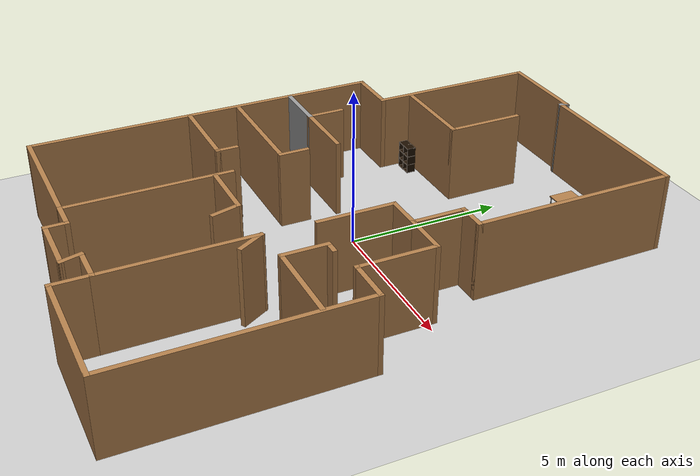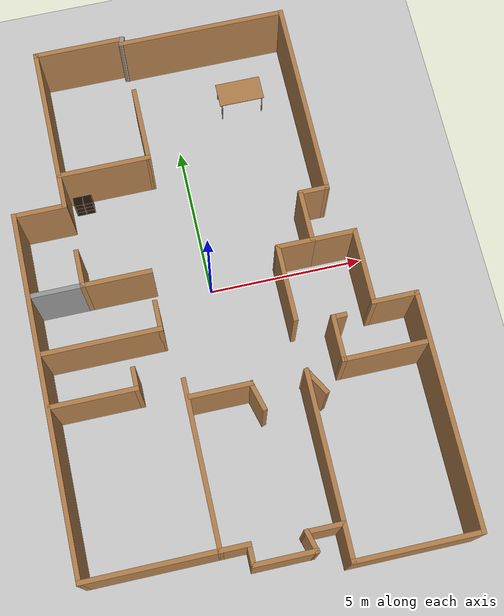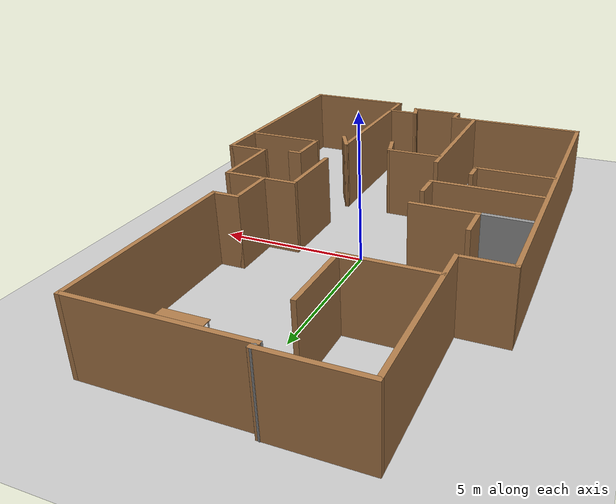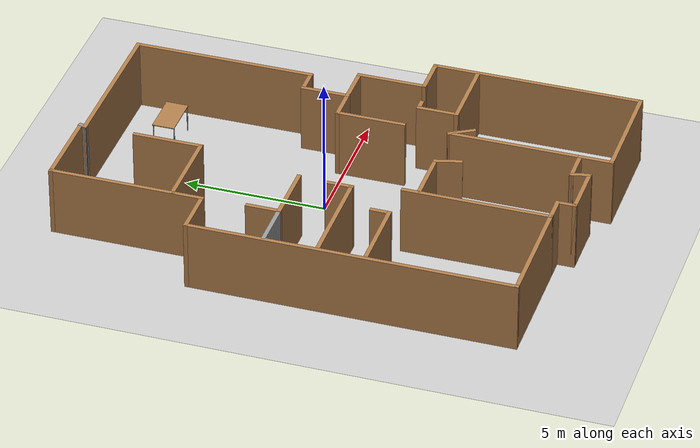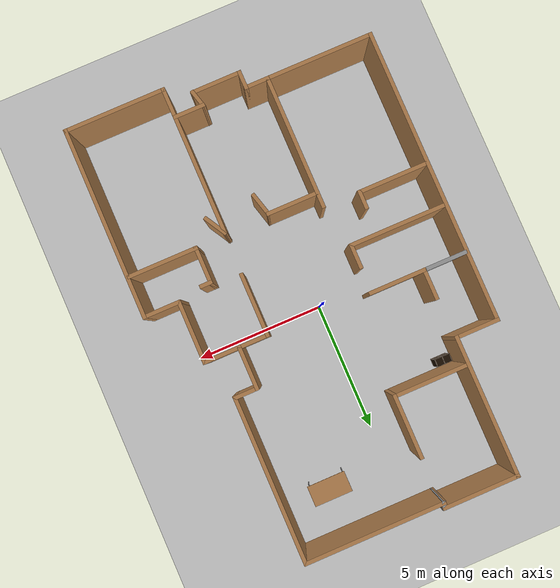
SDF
<sdf version="1.6">
 <world name="default">
  <model name="ground_plane">
   <static>1</static>
   <link name="link">
    <collision name="collision">
     <geometry><plane><normal>0 0 1</normal><size>100 100</size></plane></geometry>
     <surface>
      <contact><collide_bitmask>65535</collide_bitmask></contact>
      <friction><ode><mu>100</mu><mu2>50</mu2></ode></friction>
     </surface>
    </collision>
    <visual name="visual">
     <cast_shadows>0</cast_shadows>
     <geometry><plane><normal>0 0 1</normal><size>100 100</size></plane></geometry>
     <material>
      <script><uri>file://media/materials/scripts/gazebo.material</uri><name>Gazebo/Grey</name></script>
     </material>
    </visual>
   </link>
  </model>
  <model name="map_60">
   <pose>0.211771 -0.553556 0 0 -0 0</pose>
   <link name="Wall_0">
    <collision name="Wall_0_Collision">
     <geometry><box><size>3 0.15 2.5</size></box></geometry>
     <pose>0 0 1.25 0 -0 0</pose>
    </collision>
    <visual name="Wall_0_Visual">
     <pose>0 0 1.25 0 -0 0</pose>
     <geometry><box><size>3 0.15 2.5</size></box></geometry>
     <material>
      <script><uri>file://media/materials/scripts/gazebo.material</uri><name>Gazebo/Wood</name></script>
      <ambient>1 1 1 1</ambient>
     </material>
     <meta><layer>0</layer></meta>
    </visual>
    <pose>-2.77235 8.90048 0 0 -0 3.14159</pose>
   </link>
   <link name="Wall_1">
    <collision name="Wall_1_Collision">
     <geometry><box><size>5.5 0.15 2.5</size></box></geometry>
     <pose>0 0 1.25 0 -0 0</pose>
    </collision>
    <visual name="Wall_1_Visual">
     <pose>0 0 1.25 0 -0 0</pose>
     <geometry><box><size>5.5 0.15 2.5</size></box></geometry>
     <material>
      <script><uri>file://media/materials/scripts/gazebo.material</uri><name>Gazebo/Wood</name></script>
      <ambient>1 1 1 1</ambient>
     </material>
     <meta><layer>0</layer></meta>
    </visual>
    <pose>-4.19735 6.22548 0 0 -0 -1.5708</pose>
   </link>
   <link name="Wall_10">
    <collision name="Wall_10_Collision">
     <geometry><box><size>5.25 0.15 2.5</size></box></geometry>
     <pose>0 0 1.25 0 -0 0</pose>
    </collision>
    <visual name="Wall_10_Visual">
     <pose>0 0 1.25 0 -0 0</pose>
     <geometry><box><size>5.25 0.15 2.5</size></box></geometry>
     <material>
      <script><uri>file://media/materials/scripts/gazebo.material</uri><name>Gazebo/Wood</name></script>
      <ambient>1 1 1 1</ambient>
     </material>
     <meta><layer>0</layer></meta>
    </visual>
    <pose>-1.69735 -5.24952 0 0 -0 1.5708</pose>
   </link>
   <link name="Wall_12">
    <collision name="Wall_12_Collision">
     <geometry><box><size>1 0.15 2.5</size></box></geometry>
     <pose>0 0 1.25 0 -0 0</pose>
    </collision>
    <visual name="Wall_12_Visual">
     <pose>0 0 1.25 0 -0 0</pose>
     <geometry><box><size>1 0.15 2.5</size></box></geometry>
     <material>
      <script><uri>file://media/materials/scripts/gazebo.material</uri><name>Gazebo/Wood</name></script>
      <ambient>1 1 1 1</ambient>
     </material>
     <meta><layer>0</layer></meta>
    </visual>
    <pose>-1.27235 -7.79952 0 0 -0 0</pose>
   </link>
   <link name="Wall_13">
    <collision name="Wall_13_Collision">
     <geometry><box><size>0.75 0.15 2.5</size></box></geometry>
     <pose>0 0 1.25 0 -0 0</pose>
    </collision>
    <visual name="Wall_13_Visual">
     <pose>0 0 1.25 0 -0 0</pose>
     <geometry><box><size>0.75 0.15 2.5</size></box></geometry>
     <material>
      <script><uri>file://media/materials/scripts/gazebo.material</uri><name>Gazebo/Wood</name></script>
      <ambient>1 1 1 1</ambient>
     </material>
     <meta><layer>0</layer></meta>
    </visual>
    <pose>-0.847354 -8.09952 0 0 -0 -1.5708</pose>
   </link>
   <link name="Wall_14">
    <collision name="Wall_14_Collision">
     <geometry><box><size>2 0.15 2.5</size></box></geometry>
     <pose>0 0 1.25 0 -0 0</pose>
    </collision>
    <visual name="Wall_14_Visual">
     <pose>0 0 1.25 0 -0 0</pose>
     <geometry><box><size>2 0.15 2.5</size></box></geometry>
     <material>
      <script><uri>file://media/materials/scripts/gazebo.material</uri><name>Gazebo/Wood</name></script>
      <ambient>1 1 1 1</ambient>
     </material>
     <meta><layer>0</layer></meta>
    </visual>
    <pose>0.077646 -8.39952 0 0 -0 0</pose>
   </link>
   <link name="Wall_15">
    <collision name="Wall_15_Collision">
     <geometry><box><size>0.75 0.15 2.5</size></box></geometry>
     <pose>0 0 1.25 0 -0 0</pose>
    </collision>
    <visual name="Wall_15_Visual">
     <pose>0 0 1.25 0 -0 0</pose>
     <geometry><box><size>0.75 0.15 2.5</size></box></geometry>
     <material>
      <script><uri>file://media/materials/scripts/gazebo.material</uri><name>Gazebo/Wood</name></script>
      <ambient>1 1 1 1</ambient>
     </material>
     <meta><layer>0</layer></meta>
    </visual>
    <pose>0.925 -8.10974 0 0 -0 1.8326</pose>
   </link>
   <link name="Wall_16">
    <collision name="Wall_16_Collision">
     <geometry><box><size>1.25 0.15 2.5</size></box></geometry>
     <pose>0 0 1.25 0 -0 0</pose>
    </collision>
    <visual name="Wall_16_Visual">
     <pose>0 0 1.25 0 -0 0</pose>
     <geometry><box><size>1.25 0.15 2.5</size></box></geometry>
     <material>
      <script><uri>file://media/materials/scripts/gazebo.material</uri><name>Gazebo/Wood</name></script>
      <ambient>1 1 1 1</ambient>
     </material>
     <meta><layer>0</layer></meta>
    </visual>
    <pose>1.39735 -7.81996 0 0 -0 0</pose>
   </link>
   <link name="Wall_17">
    <collision name="Wall_17_Collision">
     <geometry><box><size>1.25 0.15 2.5</size></box></geometry>
     <pose>0 0 1.25 0 -0 0</pose>
    </collision>
    <visual name="Wall_17_Visual">
     <pose>0 0 1.25 0 -0 0</pose>
     <geometry><box><size>1.25 0.15 2.5</size></box></geometry>
     <material>
      <script><uri>file://media/materials/scripts/gazebo.material</uri><name>Gazebo/Wood</name></script>
      <ambient>1 1 1 1</ambient>
     </material>
     <meta><layer>0</layer></meta>
    </visual>
    <pose>1.94735 -8.36996 0 0 -0 -1.5708</pose>
   </link>
   <link name="Wall_18">
    <collision name="Wall_18_Collision">
     <geometry><box><size>4 0.15 2.5</size></box></geometry>
     <pose>0 0 1.25 0 -0 0</pose>
    </collision>
    <visual name="Wall_18_Visual">
     <pose>0 0 1.25 0 -0 0</pose>
     <geometry><box><size>4 0.15 2.5</size></box></geometry>
     <material>
      <script><uri>file://media/materials/scripts/gazebo.material</uri><name>Gazebo/Wood</name></script>
      <ambient>1 1 1 1</ambient>
     </material>
     <meta><layer>0</layer></meta>
    </visual>
    <pose>3.87236 -8.91996 0 0 -0 0</pose>
   </link>
   <link name="Wall_19">
    <collision name="Wall_19_Collision">
     <geometry><box><size>7.5 0.15 2.5</size></box></geometry>
     <pose>0 0 1.25 0 -0 0</pose>
    </collision>
    <visual name="Wall_19_Visual">
     <pose>0 0 1.25 0 -0 0</pose>
     <geometry><box><size>7.5 0.15 2.5</size></box></geometry>
     <material>
      <script><uri>file://media/materials/scripts/gazebo.material</uri><name>Gazebo/Wood</name></script>
      <ambient>1 1 1 1</ambient>
     </material>
     <meta><layer>0</layer></meta>
    </visual>
    <pose>5.79735 -5.24496 0 0 -0 1.5708</pose>
   </link>
   <link name="Wall_2">
    <collision name="Wall_2_Collision">
     <geometry><box><size>1.75 0.15 2.5</size></box></geometry>
     <pose>0 0 1.25 0 -0 0</pose>
    </collision>
    <visual name="Wall_2_Visual">
     <pose>0 0 1.25 0 -0 0</pose>
     <geometry><box><size>1.75 0.15 2.5</size></box></geometry>
     <material>
      <script><uri>file://media/materials/scripts/gazebo.material</uri><name>Gazebo/Wood</name></script>
      <ambient>1 1 1 1</ambient>
     </material>
     <meta><layer>0</layer></meta>
    </visual>
    <pose>-4.99735 3.55048 0 0 -0 3.14159</pose>
   </link>
   <link name="Wall_20">
    <collision name="Wall_20_Collision">
     <geometry><box><size>1.5 0.15 2.5</size></box></geometry>
     <pose>0 0 1.25 0 -0 0</pose>
    </collision>
    <visual name="Wall_20_Visual">
     <pose>0 0 1.25 0 -0 0</pose>
     <geometry><box><size>1.5 0.15 2.5</size></box></geometry>
     <material>
      <script><uri>file://media/materials/scripts/gazebo.material</uri><name>Gazebo/Wood</name></script>
      <ambient>1 1 1 1</ambient>
     </material>
     <meta><layer>0</layer></meta>
    </visual>
    <pose>5.12235 -1.56996 0 0 -0 3.14159</pose>
   </link>
   <link name="Wall_21">
    <collision name="Wall_21_Collision">
     <geometry><box><size>2.5 0.15 2.5</size></box></geometry>
     <pose>0 0 1.25 0 -0 0</pose>
    </collision>
    <visual name="Wall_21_Visual">
     <pose>0 0 1.25 0 -0 0</pose>
     <geometry><box><size>2.5 0.15 2.5</size></box></geometry>
     <material>
      <script><uri>file://media/materials/scripts/gazebo.material</uri><name>Gazebo/Wood</name></script>
      <ambient>1 1 1 1</ambient>
     </material>
     <meta><layer>0</layer></meta>
    </visual>
    <pose>4.44735 -0.394963 0 0 -0 1.5708</pose>
   </link>
   <link name="Wall_22">
    <collision name="Wall_22_Collision">
     <geometry><box><size>1.5 0.15 2.5</size></box></geometry>
     <pose>0 0 1.25 0 -0 0</pose>
    </collision>
    <visual name="Wall_22_Visual">
     <pose>0 0 1.25 0 -0 0</pose>
     <geometry><box><size>1.5 0.15 2.5</size></box></geometry>
     <material>
      <script><uri>file://media/materials/scripts/gazebo.material</uri><name>Gazebo/Wood</name></script>
      <ambient>1 1 1 1</ambient>
     </material>
     <meta><layer>0</layer></meta>
    </visual>
    <pose>3.77236 0.780037 0 0 -0 3.14159</pose>
   </link>
   <link name="Wall_23">
    <collision name="Wall_23_Collision">
     <geometry><box><size>1.75 0.15 2.5</size></box></geometry>
     <pose>0 0 1.25 0 -0 0</pose>
    </collision>
    <visual name="Wall_23_Visual">
     <pose>0 0 1.25 0 -0 0</pose>
     <geometry><box><size>1.75 0.15 2.5</size></box></geometry>
     <material>
      <script><uri>file://media/materials/scripts/gazebo.material</uri><name>Gazebo/Wood</name></script>
      <ambient>1 1 1 1</ambient>
     </material>
     <meta><layer>0</layer></meta>
    </visual>
    <pose>3.09735 1.58004 0 0 -0 1.5708</pose>
   </link>
   <link name="Wall_24">
    <collision name="Wall_24_Collision">
     <geometry><box><size>1 0.15 2.5</size></box></geometry>
     <pose>0 0 1.25 0 -0 0</pose>
    </collision>
    <visual name="Wall_24_Visual">
     <pose>0 0 1.25 0 -0 0</pose>
     <geometry><box><size>1 0.15 2.5</size></box></geometry>
     <material>
      <script><uri>file://media/materials/scripts/gazebo.material</uri><name>Gazebo/Wood</name></script>
      <ambient>1 1 1 1</ambient>
     </material>
     <meta><layer>0</layer></meta>
    </visual>
    <pose>3.52236 2.38004 0 0 -0 0</pose>
   </link>
   <link name="Wall_25">
    <collision name="Wall_25_Collision">
     <geometry><box><size>6.5 0.15 2.5</size></box></geometry>
     <pose>0 0 1.25 0 -0 0</pose>
    </collision>
    <visual name="Wall_25_Visual">
     <pose>0 0 1.25 0 -0 0</pose>
     <geometry><box><size>6.5 0.15 2.5</size></box></geometry>
     <material>
      <script><uri>file://media/materials/scripts/gazebo.material</uri><name>Gazebo/Wood</name></script>
      <ambient>1 1 1 1</ambient>
     </material>
     <meta><layer>0</layer></meta>
    </visual>
    <pose>3.94735 5.55504 0 0 -0 1.5708</pose>
   </link>
   <link name="Wall_26">
    <collision name="Wall_26_Collision">
     <geometry><box><size>5.5 0.15 2.5</size></box></geometry>
     <pose>0 0 1.25 0 -0 0</pose>
    </collision>
    <visual name="Wall_26_Visual">
     <pose>0 0 1.25 0 -0 0</pose>
     <geometry><box><size>5.5 0.15 2.5</size></box></geometry>
     <material>
      <script><uri>file://media/materials/scripts/gazebo.material</uri><name>Gazebo/Wood</name></script>
      <ambient>1 1 1 1</ambient>
     </material>
     <meta><layer>0</layer></meta>
    </visual>
    <pose>1.27235 8.73004 0 0 -0 3.14159</pose>
   </link>
   <link name="Wall_28">
    <collision name="Wall_28_Collision">
     <geometry><box><size>0.329188 0.15 2.5</size></box></geometry>
     <pose>0 0 1.25 0 -0 0</pose>
    </collision>
    <visual name="Wall_28_Visual">
     <pose>0 0 1.25 0 -0 0</pose>
     <geometry><box><size>0.329188 0.15 2.5</size></box></geometry>
     <material>
      <script><uri>file://media/materials/scripts/gazebo.material</uri><name>Gazebo/Grey</name></script>
      <ambient>1 1 1 1</ambient>
     </material>
     <meta><layer>0</layer></meta>
    </visual>
    <pose>-1.375 8.81526 0 0 -0 1.25711</pose>
   </link>
   <link name="Wall_30">
    <collision name="Wall_30_Collision">
     <geometry><box><size>1.75 0.15 2.5</size></box></geometry>
     <pose>0 0 1.25 0 -0 0</pose>
    </collision>
    <visual name="Wall_30_Visual">
     <pose>0 0 1.25 0 -0 0</pose>
     <geometry><box><size>1.75 0.15 2.5</size></box></geometry>
     <material>
      <script><uri>file://media/materials/scripts/gazebo.material</uri><name>Gazebo/Grey</name></script>
      <ambient>1 1 1 1</ambient>
     </material>
     <meta><layer>0</layer></meta>
    </visual>
    <pose>-4.90979 0.867221 0 0 -0 0</pose>
   </link>
   <link name="Wall_31">
    <collision name="Wall_31_Collision">
     <geometry><box><size>1.25 0.15 2.5</size></box></geometry>
     <pose>0 0 1.25 0 -0 0</pose>
    </collision>
    <visual name="Wall_31_Visual">
     <pose>0 0 1.25 0 -0 0</pose>
     <geometry><box><size>1.25 0.15 2.5</size></box></geometry>
     <material>
      <script><uri>file://media/materials/scripts/gazebo.material</uri><name>Gazebo/Wood</name></script>
      <ambient>1 1 1 1</ambient>
     </material>
     <meta><layer>0</layer></meta>
    </visual>
    <pose>-4.10979 1.41722 0 0 -0 1.5708</pose>
   </link>
   <link name="Wall_33">
    <collision name="Wall_33_Collision">
     <geometry><box><size>2.75 0.15 2.5</size></box></geometry>
     <pose>0 0 1.25 0 -0 0</pose>
    </collision>
    <visual name="Wall_33_Visual">
     <pose>0 0 1.25 0 -0 0</pose>
     <geometry><box><size>2.75 0.15 2.5</size></box></geometry>
     <material>
      <script><uri>file://media/materials/scripts/gazebo.material</uri><name>Gazebo/Wood</name></script>
      <ambient>1 1 1 1</ambient>
     </material>
     <meta><layer>0</layer></meta>
    </visual>
    <pose>4.4283 -3.12281 0 0 -0 3.14159</pose>
   </link>
   <link name="Wall_34">
    <collision name="Wall_34_Collision">
     <geometry><box><size>1.5 0.15 2.5</size></box></geometry>
     <pose>0 0 1.25 0 -0 0</pose>
    </collision>
    <visual name="Wall_34_Visual">
     <pose>0 0 1.25 0 -0 0</pose>
     <geometry><box><size>1.5 0.15 2.5</size></box></geometry>
     <material>
      <script><uri>file://media/materials/scripts/gazebo.material</uri><name>Gazebo/Wood</name></script>
      <ambient>1 1 1 1</ambient>
     </material>
     <meta><layer>0</layer></meta>
    </visual>
    <pose>3.1283 -2.44781 0 0 -0 1.5708</pose>
   </link>
   <link name="Wall_38">
    <collision name="Wall_38_Collision">
     <geometry><box><size>4.75 0.15 2.5</size></box></geometry>
     <pose>0 0 1.25 0 -0 0</pose>
    </collision>
    <visual name="Wall_38_Visual">
     <pose>0 0 1.25 0 -0 0</pose>
     <geometry><box><size>4.75 0.15 2.5</size></box></geometry>
     <material>
      <script><uri>file://media/materials/scripts/gazebo.material</uri><name>Gazebo/Wood</name></script>
      <ambient>1 1 1 1</ambient>
     </material>
     <meta><layer>0</layer></meta>
    </visual>
    <pose>1.94735 -5.51996 0 0 -0 1.5708</pose>
   </link>
   <link name="Wall_40">
    <collision name="Wall_40_Collision">
     <geometry><box><size>2 0.15 2.5</size></box></geometry>
     <pose>0 0 1.25 0 -0 0</pose>
    </collision>
    <visual name="Wall_40_Visual">
     <pose>0 0 1.25 0 -0 0</pose>
     <geometry><box><size>2 0.15 2.5</size></box></geometry>
     <material>
      <script><uri>file://media/materials/scripts/gazebo.material</uri><name>Gazebo/Wood</name></script>
      <ambient>1 1 1 1</ambient>
     </material>
     <meta><layer>0</layer></meta>
    </visual>
    <pose>-0.688356 -3.22921 0 0 -0 0</pose>
   </link>
   <link name="Wall_41">
    <collision name="Wall_41_Collision">
     <geometry><box><size>1 0.15 2.5</size></box></geometry>
     <pose>0 0 1.25 0 -0 0</pose>
    </collision>
    <visual name="Wall_41_Visual">
     <pose>0 0 1.25 0 -0 0</pose>
     <geometry><box><size>1 0.15 2.5</size></box></geometry>
     <material>
      <script><uri>file://media/materials/scripts/gazebo.material</uri><name>Gazebo/Wood</name></script>
      <ambient>1 1 1 1</ambient>
     </material>
     <meta><layer>0</layer></meta>
    </visual>
    <pose>0.346642 -3.63973 0 0 -0 -1.309</pose>
   </link>
   <link name="Wall_43">
    <collision name="Wall_43_Collision">
     <geometry><box><size>1 0.15 2.5</size></box></geometry>
     <pose>0 0 1.25 0 -0 0</pose>
    </collision>
    <visual name="Wall_43_Visual">
     <pose>0 0 1.25 0 -0 0</pose>
     <geometry><box><size>1 0.15 2.5</size></box></geometry>
     <material>
      <script><uri>file://media/materials/scripts/gazebo.material</uri><name>Gazebo/Wood</name></script>
      <ambient>1 1 1 1</ambient>
     </material>
     <meta><layer>0</layer></meta>
    </visual>
    <pose>2.15985 -3.58802 0 0 -0 -1.0472</pose>
   </link>
   <link name="Wall_52">
    <collision name="Wall_52_Collision">
     <geometry><box><size>2.75 0.15 2.5</size></box></geometry>
     <pose>0 0 1.25 0 -0 0</pose>
    </collision>
    <visual name="Wall_52_Visual">
     <pose>0 0 1.25 0 -0 0</pose>
     <geometry><box><size>2.75 0.15 2.5</size></box></geometry>
     <material>
      <script><uri>file://media/materials/scripts/gazebo.material</uri><name>Gazebo/Wood</name></script>
      <ambient>1 1 1 1</ambient>
     </material>
     <meta><layer>0</layer></meta>
    </visual>
    <pose>-4.40979 -2.644 0 0 -0 0</pose>
   </link>
   <link name="Wall_53">
    <collision name="Wall_53_Collision">
     <geometry><box><size>0.75 0.15 2.5</size></box></geometry>
     <pose>0 0 1.25 0 -0 0</pose>
    </collision>
    <visual name="Wall_53_Visual">
     <pose>0 0 1.25 0 -0 0</pose>
     <geometry><box><size>0.75 0.15 2.5</size></box></geometry>
     <material>
      <script><uri>file://media/materials/scripts/gazebo.material</uri><name>Gazebo/Wood</name></script>
      <ambient>1 1 1 1</ambient>
     </material>
     <meta><layer>0</layer></meta>
    </visual>
    <pose>-3.10979 -2.34401 0 0 -0 1.5708</pose>
   </link>
   <link name="Wall_55">
    <collision name="Wall_55_Collision">
     <geometry><box><size>3 0.15 2.5</size></box></geometry>
     <pose>0 0 1.25 0 -0 0</pose>
    </collision>
    <visual name="Wall_55_Visual">
     <pose>0 0 1.25 0 -0 0</pose>
     <geometry><box><size>3 0.15 2.5</size></box></geometry>
     <material>
      <script><uri>file://media/materials/scripts/gazebo.material</uri><name>Gazebo/Wood</name></script>
      <ambient>1 1 1 1</ambient>
     </material>
     <meta><layer>0</layer></meta>
    </visual>
    <pose>-2.74198 4.59125 0 0 -0 0</pose>
   </link>
   <link name="Wall_56">
    <collision name="Wall_56_Collision">
     <geometry><box><size>2.5 0.15 2.5</size></box></geometry>
     <pose>0 0 1.25 0 -0 0</pose>
    </collision>
    <visual name="Wall_56_Visual">
     <pose>0 0 1.25 0 -0 0</pose>
     <geometry><box><size>2.5 0.15 2.5</size></box></geometry>
     <material>
      <script><uri>file://media/materials/scripts/gazebo.material</uri><name>Gazebo/Wood</name></script>
      <ambient>1 1 1 1</ambient>
     </material>
     <meta><layer>0</layer></meta>
    </visual>
    <pose>-1.31698 5.76625 0 0 -0 1.5708</pose>
   </link>
   <link name="Wall_58">
    <collision name="Wall_58_Collision">
     <geometry><box><size>1.25 0.15 2.5</size></box></geometry>
     <pose>0 0 1.25 0 -0 0</pose>
    </collision>
    <visual name="Wall_58_Visual">
     <pose>0 0 1.25 0 -0 0</pose>
     <geometry><box><size>1.25 0.15 2.5</size></box></geometry>
     <material>
      <script><uri>file://media/materials/scripts/gazebo.material</uri><name>Gazebo/Wood</name></script>
      <ambient>1 1 1 1</ambient>
     </material>
     <meta><layer>0</layer></meta>
    </visual>
    <pose>2.54735 0.780037 0 0 -0 3.14159</pose>
   </link>
   <link name="Wall_59">
    <collision name="Wall_59_Collision">
     <geometry><box><size>2.5 0.15 2.5</size></box></geometry>
     <pose>0 0 1.25 0 -0 0</pose>
    </collision>
    <visual name="Wall_59_Visual">
     <pose>0 0 1.25 0 -0 0</pose>
     <geometry><box><size>2.5 0.15 2.5</size></box></geometry>
     <material>
      <script><uri>file://media/materials/scripts/gazebo.material</uri><name>Gazebo/Wood</name></script>
      <ambient>1 1 1 1</ambient>
     </material>
     <meta><layer>0</layer></meta>
    </visual>
    <pose>1.99735 -0.394963 0 0 -0 -1.5708</pose>
   </link>
   <link name="Wall_61">
    <collision name="Wall_61_Collision">
     <geometry><box><size>0.5 0.15 2.5</size></box></geometry>
     <pose>0 0 1.25 0 -0 0</pose>
    </collision>
    <visual name="Wall_61_Visual">
     <pose>0 0 1.25 0 -0 0</pose>
     <geometry><box><size>0.5 0.15 2.5</size></box></geometry>
     <material>
      <script><uri>file://media/materials/scripts/gazebo.material</uri><name>Gazebo/Wood</name></script>
      <ambient>1 1 1 1</ambient>
     </material>
     <meta><layer>0</layer></meta>
    </visual>
    <pose>3.3033 -1.77281 0 0 -0 0</pose>
   </link>
   <link name="Wall_63">
    <collision name="Wall_63_Collision">
     <geometry><box><size>2.25 0.15 2.5</size></box></geometry>
     <pose>0 0 1.25 0 -0 0</pose>
    </collision>
    <visual name="Wall_63_Visual">
     <pose>0 0 1.25 0 -0 0</pose>
     <geometry><box><size>2.25 0.15 2.5</size></box></geometry>
     <material>
      <script><uri>file://media/materials/scripts/gazebo.material</uri><name>Gazebo/Wood</name></script>
      <ambient>1 1 1 1</ambient>
     </material>
     <meta><layer>0</layer></meta>
    </visual>
    <pose>-3.05979 0.867221 0 0 -0 0</pose>
   </link>
   <link name="Wall_68">
    <collision name="Wall_68_Collision">
     <geometry><box><size>3.75 0.15 2.5</size></box></geometry>
     <pose>0 0 1.25 0 -0 0</pose>
    </collision>
    <visual name="Wall_68_Visual">
     <pose>0 0 1.25 0 -0 0</pose>
     <geometry><box><size>3.75 0.15 2.5</size></box></geometry>
     <material>
      <script><uri>file://media/materials/scripts/gazebo.material</uri><name>Gazebo/Wood</name></script>
      <ambient>1 1 1 1</ambient>
     </material>
     <meta><layer>0</layer></meta>
    </visual>
    <pose>-3.85659 -0.994793 0 0 -0 0</pose>
   </link>
   <link name="Wall_70">
    <collision name="Wall_70_Collision">
     <geometry><box><size>1 0.15 2.5</size></box></geometry>
     <pose>0 0 1.25 0 -0 0</pose>
    </collision>
    <visual name="Wall_70_Visual">
     <pose>0 0 1.25 0 -0 0</pose>
     <geometry><box><size>1 0.15 2.5</size></box></geometry>
     <material>
      <script><uri>file://media/materials/scripts/gazebo.material</uri><name>Gazebo/Wood</name></script>
      <ambient>1 1 1 1</ambient>
     </material>
     <meta><layer>0</layer></meta>
    </visual>
    <pose>-2.05659 -0.569793 0 0 -0 1.5708</pose>
   </link>
   <link name="Wall_8">
    <collision name="Wall_8_Collision">
     <geometry><box><size>11.5 0.15 2.5</size></box></geometry>
     <pose>0 0 1.25 0 -0 0</pose>
    </collision>
    <visual name="Wall_8_Visual">
     <pose>0 0 1.25 0 -0 0</pose>
     <geometry><box><size>11.5 0.15 2.5</size></box></geometry>
     <material>
      <script><uri>file://media/materials/scripts/gazebo.material</uri><name>Gazebo/Wood</name></script>
      <ambient>1 1 1 1</ambient>
     </material>
     <meta><layer>0</layer></meta>
    </visual>
    <pose>-5.79735 -2.12452 0 0 -0 -1.5708</pose>
   </link>
   <link name="Wall_9">
    <collision name="Wall_9_Collision">
     <geometry><box><size>4.25 0.15 2.5</size></box></geometry>
     <pose>0 0 1.25 0 -0 0</pose>
    </collision>
    <visual name="Wall_9_Visual">
     <pose>0 0 1.25 0 -0 0</pose>
     <geometry><box><size>4.25 0.15 2.5</size></box></geometry>
     <material>
      <script><uri>file://media/materials/scripts/gazebo.material</uri><name>Gazebo/Wood</name></script>
      <ambient>1 1 1 1</ambient>
     </material>
     <meta><layer>0</layer></meta>
    </visual>
    <pose>-3.74735 -7.79952 0 0 -0 0</pose>
   </link>
   <static>1</static>
  </model>
  <model name="table">
   <static>1</static>
   <link name="link">
    <collision name="surface">
     <pose>0 0 1 0 -0 0</pose>
     <geometry><box><size>1.5 0.8 0.03</size></box></geometry>
     <surface><friction><ode><mu>0.6</mu><mu2>0.6</mu2></ode></friction></surface>
    </collision>
    <visual name="visual1">
     <pose>0 0 1 0 -0 0</pose>
     <geometry><box><size>1.5 0.8 0.03</size></box></geometry>
     <material>
      <script><uri>file://media/materials/scripts/gazebo.material</uri><name>Gazebo/Wood</name></script>
     </material>
    </visual>
    <collision name="front_left_leg">
     <pose>0.68 0.38 0.5 0 -0 0</pose>
     <geometry><cylinder><radius>0.02</radius><length>1</length></cylinder></geometry>
    </collision>
    <visual name="front_left_leg">
     <pose>0.68 0.38 0.5 0 -0 0</pose>
     <geometry><cylinder><radius>0.02</radius><length>1</length></cylinder></geometry>
     <material>
      <script><uri>file://media/materials/scripts/gazebo.material</uri><name>Gazebo/Grey</name></script>
     </material>
    </visual>
    <collision name="front_right_leg">
     <pose>0.68 -0.38 0.5 0 -0 0</pose>
     <geometry><cylinder><radius>0.02</radius><length>1</length></cylinder></geometry>
    </collision>
    <visual name="front_right_leg">
     <pose>0.68 -0.38 0.5 0 -0 0</pose>
     <geometry><cylinder><radius>0.02</radius><length>1</length></cylinder></geometry>
     <material>
      <script><uri>file://media/materials/scripts/gazebo.material</uri><name>Gazebo/Grey</name></script>
     </material>
    </visual>
    <collision name="back_right_leg">
     <pose>-0.68 -0.38 0.5 0 -0 0</pose>
     <geometry><cylinder><radius>0.02</radius><length>1</length></cylinder></geometry>
    </collision>
    <visual name="back_right_leg">
     <pose>-0.68 -0.38 0.5 0 -0 0</pose>
     <geometry><cylinder><radius>0.02</radius><length>1</length></cylinder></geometry>
     <material>
      <script><uri>file://media/materials/scripts/gazebo.material</uri><name>Gazebo/Grey</name></script>
     </material>
    </visual>
    <collision name="back_left_leg">
     <pose>-0.68 0.38 0.5 0 -0 0</pose>
     <geometry><cylinder><radius>0.02</radius><length>1</length></cylinder></geometry>
    </collision>
    <visual name="back_left_leg">
     <pose>-0.68 0.38 0.5 0 -0 0</pose>
     <geometry><cylinder><radius>0.02</radius><length>1</length></cylinder></geometry>
     <material>
      <script><uri>file://media/materials/scripts/gazebo.material</uri><name>Gazebo/Grey</name></script>
     </material>
    </visual>
   </link>
   <pose>2.37419 6.39505 0 0 -0 0</pose>
  </model>
  <model name="6_Cube_StorageE_2">
   <link name="Wall_0">
    <pose>0 0 0.01 0 -0 0</pose>
    <inertial>
     <mass>1.6201</mass>
     <inertia><ixx>0.0119</ixx><iyy>0.0631</iyy><izz>0.0513</izz><ixy>0</ixy><ixz>0</ixz><iyz>0</iyz></inertia>
    </inertial>
    <collision name="Wall_0_Collision"><geometry><box><size>0.616 0.296 0.02</size></box></geometry></collision>
    <visual name="Wall_0_Visual">
     <geometry><box><size>0.616 0.296 0.02</size></box></geometry>
     <material>
      <script><uri>file://media/materials/scripts/gazebo.material</uri><name>Gazebo/Grey</name></script>
      <ambient>0.105882 0.0509804 0 1</ambient>
     </material>
    </visual>
   </link>
   <joint name="0_2" type="fixed">
    <pose>-0.308 0 0 0 -0 0</pose>
    <parent>Wall_2</parent>
    <child>Wall_0</child>
    <axis>
     <xyz>1 0 0</xyz>
     <use_parent_model_frame>0</use_parent_model_frame>
     <limit><lower>-1e+16</lower><upper>1e+16</upper></limit>
    </axis>
   </joint>
   <joint name="0_12" type="fixed">
    <parent>Wall_12</parent>
    <child>Wall_0</child>
    <axis>
     <xyz>0 0 1</xyz>
     <use_parent_model_frame>0</use_parent_model_frame>
     <limit><lower>-1e+16</lower><upper>1e+16</upper></limit>
    </axis>
   </joint>
   <joint name="0_4" type="fixed">
    <pose>0.308 0 0 0 -0 0</pose>
    <parent>Wall_4</parent>
    <child>Wall_0</child>
    <axis>
     <xyz>1 0 0</xyz>
     <use_parent_model_frame>0</use_parent_model_frame>
     <limit><lower>-1e+16</lower><upper>1e+16</upper></limit>
    </axis>
   </joint>
   <link name="Wall_10">
    <pose>0 0 0.61 0 -0 0</pose>
    <inertial>
     <mass>1.6201</mass>
     <inertia><ixx>0.0119</ixx><iyy>0.0631</iyy><izz>0.0513</izz><ixy>0</ixy><ixz>0</ixz><iyz>0</iyz></inertia>
    </inertial>
    <collision name="Wall_10_Collision"><geometry><box><size>0.616 0.296 0.02</size></box></geometry></collision>
    <visual name="Wall_10_Visual">
     <geometry><box><size>0.616 0.296 0.02</size></box></geometry>
     <material>
      <script><uri>file://media/materials/scripts/gazebo.material</uri><name>Gazebo/Grey</name></script>
      <ambient>0.105882 0.0509804 0 1</ambient>
     </material>
    </visual>
   </link>
   <joint name="10_2" type="fixed">
    <pose>-0.308 0 0 0 -0 0</pose>
    <parent>Wall_2</parent>
    <child>Wall_10</child>
    <axis>
     <xyz>1 0 0</xyz>
     <use_parent_model_frame>0</use_parent_model_frame>
     <limit><lower>-1e+16</lower><upper>1e+16</upper></limit>
    </axis>
   </joint>
   <joint name="10_12" type="fixed">
    <parent>Wall_12</parent>
    <child>Wall_10</child>
    <axis>
     <xyz>0 0 1</xyz>
     <use_parent_model_frame>0</use_parent_model_frame>
     <limit><lower>-1e+16</lower><upper>1e+16</upper></limit>
    </axis>
   </joint>
   <joint name="10_4" type="fixed">
    <pose>0.308 0 0 0 -0 0</pose>
    <parent>Wall_4</parent>
    <child>Wall_10</child>
    <axis>
     <xyz>1 0 0</xyz>
     <use_parent_model_frame>0</use_parent_model_frame>
     <limit><lower>-1e+16</lower><upper>1e+16</upper></limit>
    </axis>
   </joint>
   <link name="Wall_12">
    <pose>0 0 0.4575 0 -0 0</pose>
    <inertial>
     <mass>2.4065</mass>
     <inertia><ixx>0.0177</ixx><iyy>0.1855</iyy><izz>0.168</izz><ixy>0</ixy><ixz>0</ixz><iyz>0</iyz></inertia>
    </inertial>
    <collision name="Wall_12_Collision"><geometry><box><size>0.02 0.296 0.915</size></box></geometry></collision>
    <visual name="Wall_12_Visual">
     <geometry><box><size>0.02 0.296 0.915</size></box></geometry>
     <material>
      <script><uri>file://media/materials/scripts/gazebo.material</uri><name>Gazebo/Grey</name></script>
      <ambient>0.105882 0.0509804 0 1</ambient>
     </material>
    </visual>
   </link>
   <link name="Wall_2">
    <pose>-0.298 0 0.4575 0 -0 0</pose>
    <inertial>
     <mass>2.4065</mass>
     <inertia><ixx>0.0177</ixx><iyy>0.1855</iyy><izz>0.168</izz><ixy>0</ixy><ixz>0</ixz><iyz>0</iyz></inertia>
    </inertial>
    <collision name="Wall_2_Collision"><geometry><box><size>0.02 0.296 0.915</size></box></geometry></collision>
    <visual name="Wall_2_Visual">
     <geometry><box><size>0.02 0.296 0.915</size></box></geometry>
     <material>
      <script><uri>file://media/materials/scripts/gazebo.material</uri><name>Gazebo/Grey</name></script>
      <ambient>0.105882 0.0509804 0 1</ambient>
     </material>
    </visual>
   </link>
   <link name="Wall_4">
    <pose>0.298 0 0.4575 0 -0 0</pose>
    <inertial>
     <mass>2.4065</mass>
     <inertia><ixx>0.0177</ixx><iyy>0.1855</iyy><izz>0.168</izz><ixy>0</ixy><ixz>0</ixz><iyz>0</iyz></inertia>
    </inertial>
    <collision name="Wall_4_Collision"><geometry><box><size>0.02 0.296 0.915</size></box></geometry></collision>
    <visual name="Wall_4_Visual">
     <geometry><box><size>0.02 0.296 0.915</size></box></geometry>
     <material>
      <script><uri>file://media/materials/scripts/gazebo.material</uri><name>Gazebo/Grey</name></script>
      <ambient>0.105882 0.0509804 0 1</ambient>
     </material>
    </visual>
   </link>
   <link name="Wall_6">
    <pose>0 0 0.905 0 -0 0</pose>
    <inertial>
     <mass>1.6201</mass>
     <inertia><ixx>0.0119</ixx><iyy>0.0631</iyy><izz>0.0513</izz><ixy>0</ixy><ixz>0</ixz><iyz>0</iyz></inertia>
    </inertial>
    <collision name="Wall_6_Collision"><geometry><box><size>0.616 0.296 0.02</size></box></geometry></collision>
    <visual name="Wall_6_Visual">
     <geometry><box><size>0.616 0.296 0.02</size></box></geometry>
     <material>
      <script><uri>file://media/materials/scripts/gazebo.material</uri><name>Gazebo/Grey</name></script>
      <ambient>0.105882 0.0509804 0 1</ambient>
     </material>
    </visual>
   </link>
   <joint name="6_2" type="fixed">
    <pose>-0.308 0 0 0 -0 0</pose>
    <parent>Wall_2</parent>
    <child>Wall_6</child>
    <axis>
     <xyz>2 0 0</xyz>
     <use_parent_model_frame>0</use_parent_model_frame>
     <limit><lower>-1e+16</lower><upper>1e+16</upper></limit>
    </axis>
   </joint>
   <joint name="6_12" type="fixed">
    <parent>Wall_12</parent>
    <child>Wall_6</child>
    <axis>
     <xyz>0 0 1</xyz>
     <use_parent_model_frame>0</use_parent_model_frame>
     <limit><lower>-1e+16</lower><upper>1e+16</upper></limit>
    </axis>
   </joint>
   <joint name="6_4" type="fixed">
    <pose>0.308 0 0 0 -0 0</pose>
    <parent>Wall_4</parent>
    <child>Wall_6</child>
    <axis>
     <xyz>1 0 0</xyz>
     <use_parent_model_frame>0</use_parent_model_frame>
     <limit><lower>-1e+16</lower><upper>1e+16</upper></limit>
    </axis>
   </joint>
   <link name="Wall_8">
    <pose>0 0 0.305 0 -0 0</pose>
    <inertial>
     <mass>1.6201</mass>
     <inertia><ixx>0.0119</ixx><iyy>0.0631</iyy><izz>0.0513</izz><ixy>0</ixy><ixz>0</ixz><iyz>0</iyz></inertia>
    </inertial>
    <collision name="Wall_8_Collision"><geometry><box><size>0.616 0.296 0.02</size></box></geometry></collision>
    <visual name="Wall_8_Visual">
     <geometry><box><size>0.616 0.296 0.02</size></box></geometry>
     <material>
      <script><uri>file://media/materials/scripts/gazebo.material</uri><name>Gazebo/Grey</name></script>
      <ambient>0.105882 0.0509804 0 1</ambient>
     </material>
    </visual>
   </link>
   <joint name="8_2" type="fixed">
    <pose>-0.308 0 0 0 -0 0</pose>
    <parent>Wall_2</parent>
    <child>Wall_8</child>
    <axis>
     <xyz>1 0 0</xyz>
     <use_parent_model_frame>0</use_parent_model_frame>
     <limit><lower>-1e+16</lower><upper>1e+16</upper></limit>
    </axis>
   </joint>
   <joint name="8_12" type="fixed">
    <parent>Wall_12</parent>
    <child>Wall_8</child>
    <axis>
     <xyz>0 0 1</xyz>
     <use_parent_model_frame>0</use_parent_model_frame>
     <limit><lower>-1e+16</lower><upper>1e+16</upper></limit>
    </axis>
   </joint>
   <joint name="8_4" type="fixed">
    <pose>0.308 0 0 0 -0 0</pose>
    <parent>Wall_4</parent>
    <child>Wall_8</child>
    <axis>
     <xyz>1 0 0</xyz>
     <use_parent_model_frame>0</use_parent_model_frame>
     <limit><lower>-1e+16</lower><upper>1e+16</upper></limit>
    </axis>
   </joint>
   <static>1</static>
   <pose>-3.47763 3.70904 0 0 -0 0</pose>
  </model>
 </world>
</sdf>
